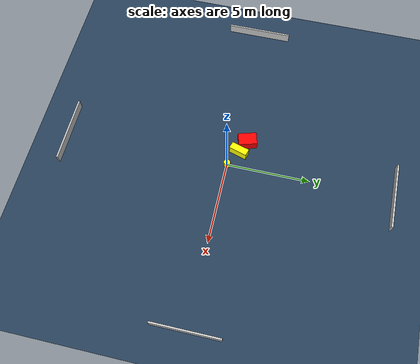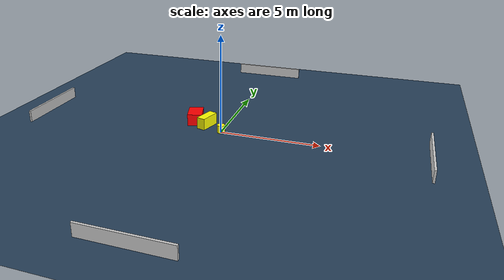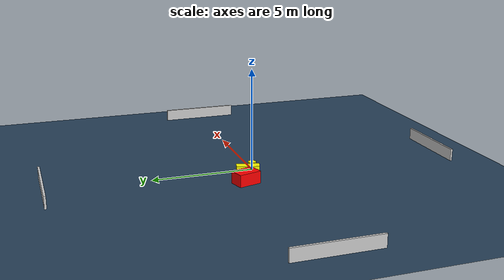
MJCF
<?xml version="1.0" ?>
<mujoco model="generated_environment">
  <option timestep="0.01" integrator="RK4" cone="elliptic"/>
  <default>
    <geom density="1"/>
  </default>
  <asset>
    <texture builtin="gradient" height="3072" name="skybox" rgb1="0.3 0.5 0.7" rgb2="0 0 0" type="skybox" width="512"/>
    <texture builtin="checker" height="300" name="groundplane" rgb1="0.2 0.3 0.4" rgb2="0.1 0.2 0.3" type="2d" width="300"/>
    <material name="groundplane" reflectance="0.2" texrepeat="5 5" texture="groundplane"/>
  </asset>
  <worldbody>
    <light dir="0 0 -1" directional="true" pos="0 0 1.5"/>
    <geom condim="3" friction="0.5 0.005 0.001" material="groundplane" name="floor" pos="0 0 0" size="0 0 0.05" type="plane"/>
    <body name="walls">
      <geom name="wall_1" condim="4" pos="-10.0 0.0 0.3" rgba="0.800000011920929 0.800000011920929 0.800000011920929 1.0" size="0.05 2.0 0.3" type="box"/>
      <geom name="wall_2" condim="4" pos="10.0 0.0 0.3" rgba="0.800000011920929 0.800000011920929 0.800000011920929 1.0" size="0.05 2.0 0.3" type="box"/>
      <geom name="wall_3" condim="4" pos="0.0 -10.0 0.3" rgba="0.800000011920929 0.800000011920929 0.800000011920929 1.0" size="2.0 0.05 0.3" type="box"/>
      <geom name="wall_4" condim="4" pos="0.0 10.0 0.3" rgba="0.800000011920929 0.800000011920929 0.800000011920929 1.0" size="2.0 0.05 0.3" type="box"/>
    </body>
    <body name="robot">
      <joint name="joint_x" type="slide" pos="0 0 0" axis="1 0 0"/>
      <joint name="joint_y" type="slide" pos="0 0 0" axis="0 1 0"/>
      <geom name="robot" type="cylinder" pos="0.0 0.0 0.2" size="0.2 0.2 0.0" mass="5.0" friction="1.0 0.005 0.0001" condim="4" rgba="1.0 1.0 0.0 1.0"/>
    </body>
    <body name="obstacle_1_movable">
      <geom name="obstacle_1_movable" condim="4" pos="-0.9540465559030409 0.5327916203610866 0.3" euler="0 0 343.5173013805429" friction="0.0 0.005 0.001" rgba="1.0 1.0 0.0 1.0" size="0.2196997800192928 0.5525345228853583 0.3" type="box" mass="0.1"/>
      <joint type="free"/>
    </body>
    <body name="obstacle_2_static">
      <geom name="obstacle_2_static" condim="4" pos="-1.7287902915310016 0.8844691960854502 0.3" euler="0 0 15.859607056069871" friction="0.0 0.005 0.001" rgba="1.0 0.0 0.0 1.0" size="0.37782845562493095 0.5608560998648968 0.3" type="box"/>
    </body>
  </worldbody>
  <actuator>
    <motor name="actuator_x" joint="joint_x" gear="1" ctrlrange="-1 1"/>
    <motor name="actuator_y" joint="joint_y" gear="1" ctrlrange="-1 1"/>
  </actuator>
</mujoco>
